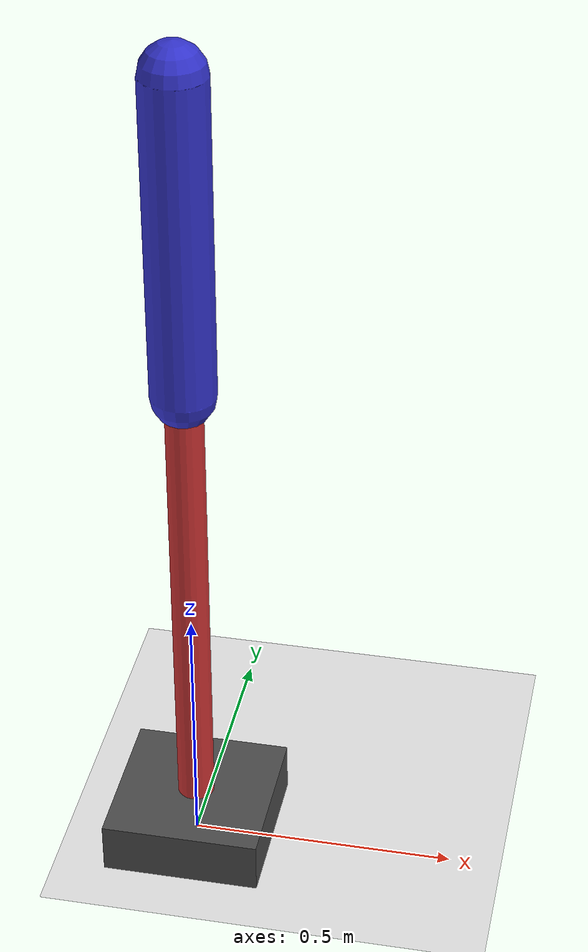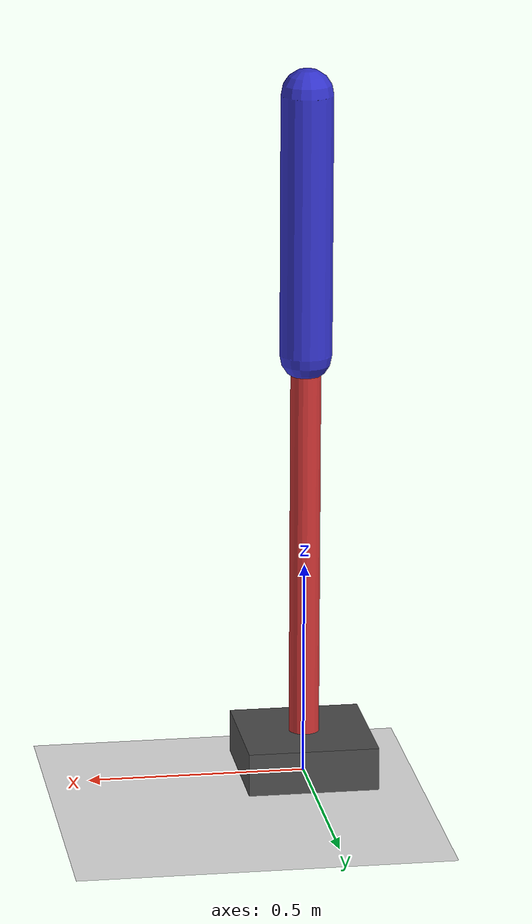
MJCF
<mujoco model="4dof_postural_control_ankle_hip">
  <compiler angle="radian" inertiafromgeom="true"/>
  <default>
    <joint armature="0.05" damping="10" stiffness="20" limited="true"/>
    <geom contype="0" friction="1 0.1 0.1" rgba="0.7 0.7 0 1"/>
  </default>
  <option gravity="0 0 -9.81" integrator="implicitfast" timestep="0.005"/>

  <!-- Axis convention: x = anterior-posterior, y = mediolateral, z = vertical -->

  <worldbody>
    <geom name="floor" type="plane" pos="0 0 0" size="5 5 0.1" rgba="0.9 0.9 0.9 1"/>

    <!-- Foot (fixed base, represents ankle pivot point) -->
    <body name="foot" pos="0 0 0.05">
      <geom name="foot_geom" type="box" size="0.15 0.15 0.05" rgba="0.3 0.3 0.3 1"/>

      <!-- ANKLE COMPLEX: 2 rotational DOF at one anatomical joint -->
      <!-- Dummy massless body carries the eversion/inversion (frontal-plane, x-axis) rotation -->
      <body name="ankle_eversion_dummy" pos="0 0 0.05">
        <joint name="ankle_eversion" type="hinge" axis="1 0 0" pos="0 0 0" range="-0.611 0.611"/>
        <inertial pos="0 0 0" mass="0.001" diaginertia="1e-6 1e-6 1e-6"/>

        <!-- Leg segment: merges old shank+thigh (ankle -> hip), carries ankle flexion (sagittal, y-axis) -->
        <body name="leg" pos="0 0 0">
          <joint name="ankle_flexion" type="hinge" axis="0 1 0" pos="0 0 0" range="-0.873 0.873"/>
          <geom name="leg_geom" type="capsule" fromto="0 0 0 0 0 0.9" size="0.035" rgba="0.8 0.2 0.2 1"/>
          <inertial pos="0 0 0.45" mass="11.0" diaginertia="0.15 0.15 0.02"/>

          <!-- HIP COMPLEX: 2 rotational DOF at one anatomical joint -->
          <!-- Dummy massless body carries the abduction/adduction (frontal-plane, x-axis) rotation -->
          <body name="hip_abduction_dummy" pos="0 0 0.9">
            <joint name="hip_abduction" type="hinge" axis="1 0 0" pos="0 0 0" range="-0.873 0.524"/>
            <inertial pos="0 0 0" mass="0.001" diaginertia="1e-6 1e-6 1e-6"/>

            <!-- Trunk segment: merges old pelvis+trunk (hip -> top), carries hip flexion (sagittal, y-axis) -->
            <body name="trunk" pos="0 0 0">
              <joint name="hip_flexion" type="hinge" axis="0 1 0" pos="0 0 0" range="-0.524 2.094"/>
              <geom name="trunk_geom" type="capsule" fromto="0 0 0 0 0 0.6" size="0.06" rgba="0.2 0.2 0.8 1"/>
              <inertial pos="0 0 0.3" mass="35.0" diaginertia="0.35 0.35 0.05"/>
            </body>

          </body>
        </body>
      </body>
    </body>
  </worldbody>

  <actuator>
    <motor name="ankle_eversion_motor" joint="ankle_eversion" gear="30" ctrlrange="-1 1"/>
    <motor name="ankle_flexion_motor" joint="ankle_flexion" gear="50" ctrlrange="-1 1"/>
    <motor name="hip_abduction_motor" joint="hip_abduction" gear="50" ctrlrange="-1 1"/>
    <motor name="hip_flexion_motor" joint="hip_flexion" gear="75" ctrlrange="-1 1"/>
  </actuator>

</mujoco>
